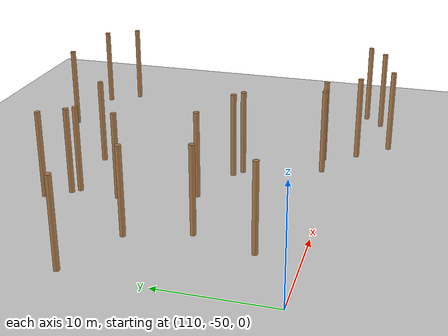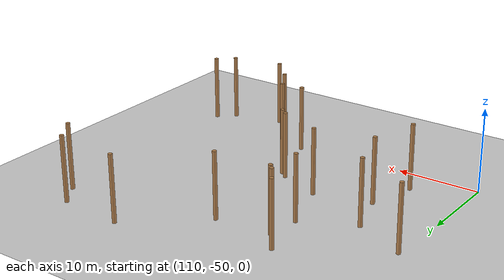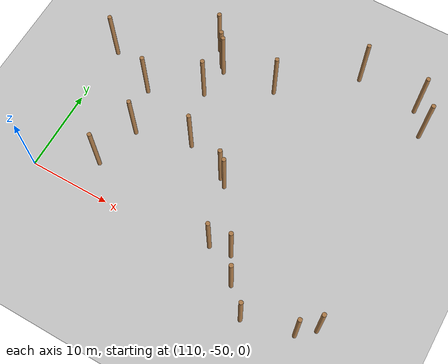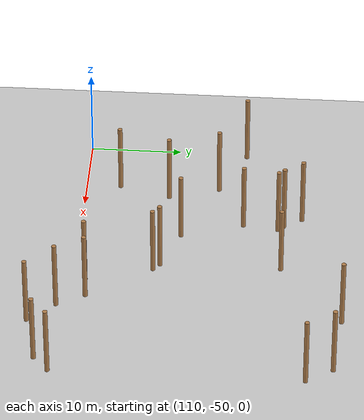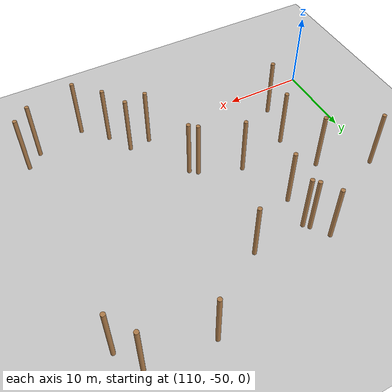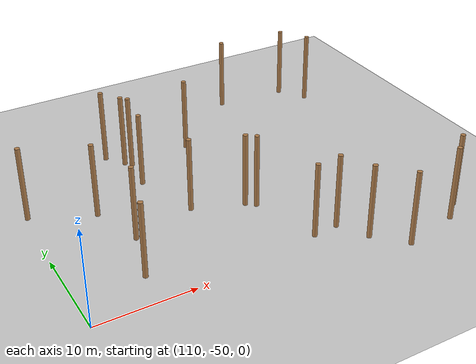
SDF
<sdf version="1.5">
 <world name="padure_tactica">
  <include><uri>model://sun</uri></include>
  <include><uri>model://ground_plane</uri></include>
  <model name="tree_87">
   <static>true</static>
   <pose>130.92 -41.58 4.0 0 0 0</pose>
   <link name="link">
    <collision name="collision">
     <geometry><cylinder><radius>0.25</radius><length>8.0</length></cylinder></geometry>
    </collision>
    <visual name="visual">
     <geometry><cylinder><radius>0.25</radius><length>8.0</length></cylinder></geometry>
     <material>
      <script><uri>file://media/materials/scripts/gazebo.material</uri><name>Gazebo/Wood</name></script>
     </material>
    </visual>
   </link>
  </model>
  <model name="tree_95">
   <static>true</static>
   <pose>123.29 -28.42 4.0 0 0 0</pose>
   <link name="link">
    <collision name="collision">
     <geometry><cylinder><radius>0.25</radius><length>8.0</length></cylinder></geometry>
    </collision>
    <visual name="visual">
     <geometry><cylinder><radius>0.25</radius><length>8.0</length></cylinder></geometry>
     <material>
      <script><uri>file://media/materials/scripts/gazebo.material</uri><name>Gazebo/Wood</name></script>
     </material>
    </visual>
   </link>
  </model>
  <model name="tree_128">
   <static>true</static>
   <pose>137.43 -51.44 4.0 0 0 0</pose>
   <link name="link">
    <collision name="collision">
     <geometry><cylinder><radius>0.25</radius><length>8.0</length></cylinder></geometry>
    </collision>
    <visual name="visual">
     <geometry><cylinder><radius>0.25</radius><length>8.0</length></cylinder></geometry>
     <material>
      <script><uri>file://media/materials/scripts/gazebo.material</uri><name>Gazebo/Wood</name></script>
     </material>
    </visual>
   </link>
  </model>
  <model name="tree_130">
   <static>true</static>
   <pose>110.44 -32.47 4.0 0 0 0</pose>
   <link name="link">
    <collision name="collision">
     <geometry><cylinder><radius>0.25</radius><length>8.0</length></cylinder></geometry>
    </collision>
    <visual name="visual">
     <geometry><cylinder><radius>0.25</radius><length>8.0</length></cylinder></geometry>
     <material>
      <script><uri>file://media/materials/scripts/gazebo.material</uri><name>Gazebo/Wood</name></script>
     </material>
    </visual>
   </link>
  </model>
  <model name="tree_132">
   <static>true</static>
   <pose>138.35 -21.05 4.0 0 0 0</pose>
   <link name="link">
    <collision name="collision">
     <geometry><cylinder><radius>0.25</radius><length>8.0</length></cylinder></geometry>
    </collision>
    <visual name="visual">
     <geometry><cylinder><radius>0.25</radius><length>8.0</length></cylinder></geometry>
     <material>
      <script><uri>file://media/materials/scripts/gazebo.material</uri><name>Gazebo/Wood</name></script>
     </material>
    </visual>
   </link>
  </model>
  <model name="tree_135">
   <static>true</static>
   <pose>130.05 -40.87 4.0 0 0 0</pose>
   <link name="link">
    <collision name="collision">
     <geometry><cylinder><radius>0.25</radius><length>8.0</length></cylinder></geometry>
    </collision>
    <visual name="visual">
     <geometry><cylinder><radius>0.25</radius><length>8.0</length></cylinder></geometry>
     <material>
      <script><uri>file://media/materials/scripts/gazebo.material</uri><name>Gazebo/Wood</name></script>
     </material>
    </visual>
   </link>
  </model>
  <model name="tree_178">
   <static>true</static>
   <pose>122.73 -27.82 4.0 0 0 0</pose>
   <link name="link">
    <collision name="collision">
     <geometry><cylinder><radius>0.25</radius><length>8.0</length></cylinder></geometry>
    </collision>
    <visual name="visual">
     <geometry><cylinder><radius>0.25</radius><length>8.0</length></cylinder></geometry>
     <material>
      <script><uri>file://media/materials/scripts/gazebo.material</uri><name>Gazebo/Wood</name></script>
     </material>
    </visual>
   </link>
  </model>
  <model name="tree_266">
   <static>true</static>
   <pose>116.68 -46.24 4.0 0 0 0</pose>
   <link name="link">
    <collision name="collision">
     <geometry><cylinder><radius>0.25</radius><length>8.0</length></cylinder></geometry>
    </collision>
    <visual name="visual">
     <geometry><cylinder><radius>0.25</radius><length>8.0</length></cylinder></geometry>
     <material>
      <script><uri>file://media/materials/scripts/gazebo.material</uri><name>Gazebo/Wood</name></script>
     </material>
    </visual>
   </link>
  </model>
  <model name="tree_273">
   <static>true</static>
   <pose>133.08 -48.72 4.0 0 0 0</pose>
   <link name="link">
    <collision name="collision">
     <geometry><cylinder><radius>0.25</radius><length>8.0</length></cylinder></geometry>
    </collision>
    <visual name="visual">
     <geometry><cylinder><radius>0.25</radius><length>8.0</length></cylinder></geometry>
     <material>
      <script><uri>file://media/materials/scripts/gazebo.material</uri><name>Gazebo/Wood</name></script>
     </material>
    </visual>
   </link>
  </model>
  <model name="tree_321">
   <static>true</static>
   <pose>147.91 -24.52 4.0 0 0 0</pose>
   <link name="link">
    <collision name="collision">
     <geometry><cylinder><radius>0.25</radius><length>8.0</length></cylinder></geometry>
    </collision>
    <visual name="visual">
     <geometry><cylinder><radius>0.25</radius><length>8.0</length></cylinder></geometry>
     <material>
      <script><uri>file://media/materials/scripts/gazebo.material</uri><name>Gazebo/Wood</name></script>
     </material>
    </visual>
   </link>
  </model>
  <model name="tree_374">
   <static>true</static>
   <pose>116.59 -35.26 4.0 0 0 0</pose>
   <link name="link">
    <collision name="collision">
     <geometry><cylinder><radius>0.25</radius><length>8.0</length></cylinder></geometry>
    </collision>
    <visual name="visual">
     <geometry><cylinder><radius>0.25</radius><length>8.0</length></cylinder></geometry>
     <material>
      <script><uri>file://media/materials/scripts/gazebo.material</uri><name>Gazebo/Wood</name></script>
     </material>
    </visual>
   </link>
  </model>
  <model name="tree_400">
   <static>true</static>
   <pose>147.99 -51.27 4.0 0 0 0</pose>
   <link name="link">
    <collision name="collision">
     <geometry><cylinder><radius>0.25</radius><length>8.0</length></cylinder></geometry>
    </collision>
    <visual name="visual">
     <geometry><cylinder><radius>0.25</radius><length>8.0</length></cylinder></geometry>
     <material>
      <script><uri>file://media/materials/scripts/gazebo.material</uri><name>Gazebo/Wood</name></script>
     </material>
    </visual>
   </link>
  </model>
  <model name="tree_434">
   <static>true</static>
   <pose>146.02 -21.70 4.0 0 0 0</pose>
   <link name="link">
    <collision name="collision">
     <geometry><cylinder><radius>0.25</radius><length>8.0</length></cylinder></geometry>
    </collision>
    <visual name="visual">
     <geometry><cylinder><radius>0.25</radius><length>8.0</length></cylinder></geometry>
     <material>
      <script><uri>file://media/materials/scripts/gazebo.material</uri><name>Gazebo/Wood</name></script>
     </material>
    </visual>
   </link>
  </model>
  <model name="tree_473">
   <static>true</static>
   <pose>118.27 -40.71 4.0 0 0 0</pose>
   <link name="link">
    <collision name="collision">
     <geometry><cylinder><radius>0.25</radius><length>8.0</length></cylinder></geometry>
    </collision>
    <visual name="visual">
     <geometry><cylinder><radius>0.25</radius><length>8.0</length></cylinder></geometry>
     <material>
      <script><uri>file://media/materials/scripts/gazebo.material</uri><name>Gazebo/Wood</name></script>
     </material>
    </visual>
   </link>
  </model>
  <model name="tree_509">
   <static>true</static>
   <pose>121.35 -25.86 4.0 0 0 0</pose>
   <link name="link">
    <collision name="collision">
     <geometry><cylinder><radius>0.25</radius><length>8.0</length></cylinder></geometry>
    </collision>
    <visual name="visual">
     <geometry><cylinder><radius>0.25</radius><length>8.0</length></cylinder></geometry>
     <material>
      <script><uri>file://media/materials/scripts/gazebo.material</uri><name>Gazebo/Wood</name></script>
     </material>
    </visual>
   </link>
  </model>
  <model name="tree_650">
   <static>true</static>
   <pose>140.17 -54.29 4.0 0 0 0</pose>
   <link name="link">
    <collision name="collision">
     <geometry><cylinder><radius>0.25</radius><length>8.0</length></cylinder></geometry>
    </collision>
    <visual name="visual">
     <geometry><cylinder><radius>0.25</radius><length>8.0</length></cylinder></geometry>
     <material>
      <script><uri>file://media/materials/scripts/gazebo.material</uri><name>Gazebo/Wood</name></script>
     </material>
    </visual>
   </link>
  </model>
  <model name="tree_687">
   <static>true</static>
   <pose>146.12 -52.91 4.0 0 0 0</pose>
   <link name="link">
    <collision name="collision">
     <geometry><cylinder><radius>0.25</radius><length>8.0</length></cylinder></geometry>
    </collision>
    <visual name="visual">
     <geometry><cylinder><radius>0.25</radius><length>8.0</length></cylinder></geometry>
     <material>
      <script><uri>file://media/materials/scripts/gazebo.material</uri><name>Gazebo/Wood</name></script>
     </material>
    </visual>
   </link>
  </model>
  <model name="tree_746">
   <static>true</static>
   <pose>130.03 -27.83 4.0 0 0 0</pose>
   <link name="link">
    <collision name="collision">
     <geometry><cylinder><radius>0.25</radius><length>8.0</length></cylinder></geometry>
    </collision>
    <visual name="visual">
     <geometry><cylinder><radius>0.25</radius><length>8.0</length></cylinder></geometry>
     <material>
      <script><uri>file://media/materials/scripts/gazebo.material</uri><name>Gazebo/Wood</name></script>
     </material>
    </visual>
   </link>
  </model>
  <model name="tree_1003">
   <static>true</static>
   <pose>122.77 -32.24 4.0 0 0 0</pose>
   <link name="link">
    <collision name="collision">
     <geometry><cylinder><radius>0.25</radius><length>8.0</length></cylinder></geometry>
    </collision>
    <visual name="visual">
     <geometry><cylinder><radius>0.25</radius><length>8.0</length></cylinder></geometry>
     <material>
      <script><uri>file://media/materials/scripts/gazebo.material</uri><name>Gazebo/Wood</name></script>
     </material>
    </visual>
   </link>
  </model>
  <model name="tree_1010">
   <static>true</static>
   <pose>135.73 -48.46 4.0 0 0 0</pose>
   <link name="link">
    <collision name="collision">
     <geometry><cylinder><radius>0.25</radius><length>8.0</length></cylinder></geometry>
    </collision>
    <visual name="visual">
     <geometry><cylinder><radius>0.25</radius><length>8.0</length></cylinder></geometry>
     <material>
      <script><uri>file://media/materials/scripts/gazebo.material</uri><name>Gazebo/Wood</name></script>
     </material>
    </visual>
   </link>
  </model>
  <model name="tree_1067">
   <static>true</static>
   <pose>124.95 -38.95 4.0 0 0 0</pose>
   <link name="link">
    <collision name="collision">
     <geometry><cylinder><radius>0.25</radius><length>8.0</length></cylinder></geometry>
    </collision>
    <visual name="visual">
     <geometry><cylinder><radius>0.25</radius><length>8.0</length></cylinder></geometry>
     <material>
      <script><uri>file://media/materials/scripts/gazebo.material</uri><name>Gazebo/Wood</name></script>
     </material>
    </visual>
   </link>
  </model>
 </world>
</sdf>
